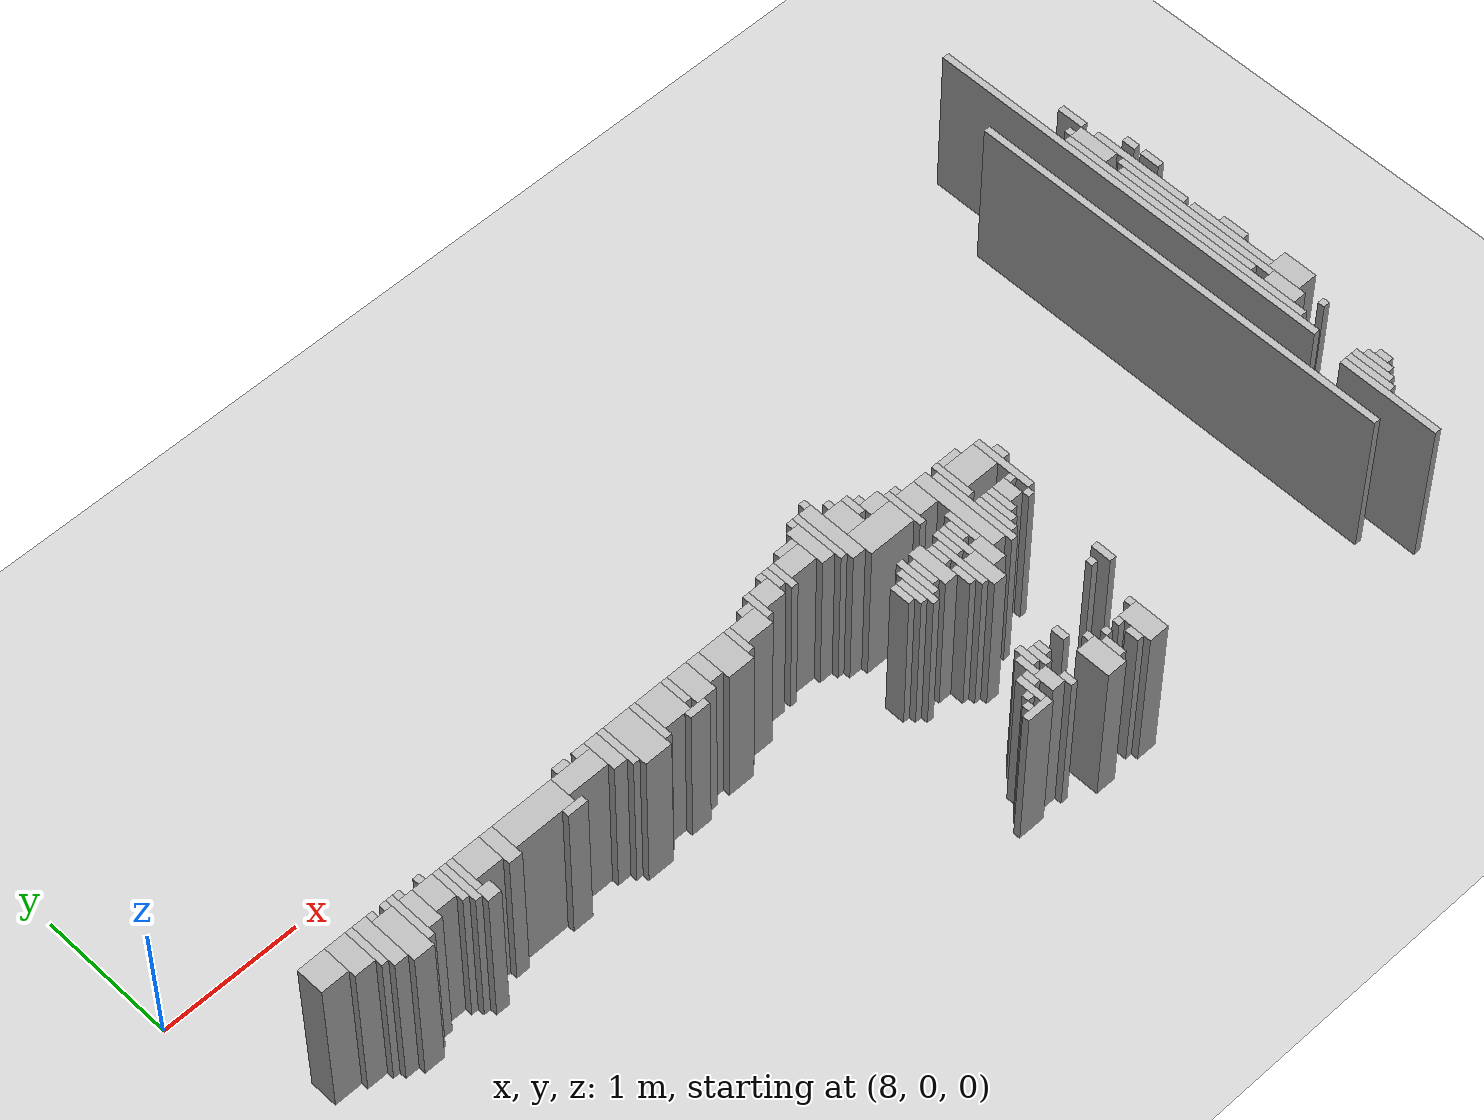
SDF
<sdf version="1.6">
 <world name="d10_floor">
  <include><uri>model://sun</uri></include>
  <include><uri>model://ground_plane</uri></include>
  <model name="d10_walls">
   <static>true</static>
   <link name="w1229">
    <pose>15.650 -2.370 0.60 0 0 0</pose>
    <collision name="c"><geometry><box><size>0.050 0.750 1.20</size></box></geometry></collision>
    <visual name="v">
     <geometry><box><size>0.050 0.750 1.20</size></box></geometry>
     <material><ambient>0.6 0.6 0.6 1</ambient><diffuse>0.7 0.7 0.7 1</diffuse></material>
    </visual>
   </link>
   <link name="w1243">
    <pose>13.050 -2.470 0.60 0 0 0</pose>
    <collision name="c"><geometry><box><size>0.150 0.250 1.20</size></box></geometry></collision>
    <visual name="v">
     <geometry><box><size>0.150 0.250 1.20</size></box></geometry>
     <material><ambient>0.6 0.6 0.6 1</ambient><diffuse>0.7 0.7 0.7 1</diffuse></material>
    </visual>
   </link>
   <link name="w1245">
    <pose>13.400 -2.470 0.60 0 0 0</pose>
    <collision name="c"><geometry><box><size>0.150 0.250 1.20</size></box></geometry></collision>
    <visual name="v">
     <geometry><box><size>0.150 0.250 1.20</size></box></geometry>
     <material><ambient>0.6 0.6 0.6 1</ambient><diffuse>0.7 0.7 0.7 1</diffuse></material>
    </visual>
   </link>
   <link name="w1247">
    <pose>13.150 -2.470 0.60 0 0 0</pose>
    <collision name="c"><geometry><box><size>0.050 0.150 1.20</size></box></geometry></collision>
    <visual name="v">
     <geometry><box><size>0.050 0.150 1.20</size></box></geometry>
     <material><ambient>0.6 0.6 0.6 1</ambient><diffuse>0.7 0.7 0.7 1</diffuse></material>
    </visual>
   </link>
   <link name="w1248">
    <pose>13.300 -2.495 0.60 0 0 0</pose>
    <collision name="c"><geometry><box><size>0.050 0.100 1.20</size></box></geometry></collision>
    <visual name="v">
     <geometry><box><size>0.050 0.100 1.20</size></box></geometry>
     <material><ambient>0.6 0.6 0.6 1</ambient><diffuse>0.7 0.7 0.7 1</diffuse></material>
    </visual>
   </link>
   <link name="w1250">
    <pose>12.525 -2.470 0.60 0 0 0</pose>
    <collision name="c"><geometry><box><size>0.200 0.050 1.20</size></box></geometry></collision>
    <visual name="v">
     <geometry><box><size>0.200 0.050 1.20</size></box></geometry>
     <material><ambient>0.6 0.6 0.6 1</ambient><diffuse>0.7 0.7 0.7 1</diffuse></material>
    </visual>
   </link>
   <link name="w1251">
    <pose>12.800 -2.445 0.60 0 0 0</pose>
    <collision name="c"><geometry><box><size>0.050 0.100 1.20</size></box></geometry></collision>
    <visual name="v">
     <geometry><box><size>0.050 0.100 1.20</size></box></geometry>
     <material><ambient>0.6 0.6 0.6 1</ambient><diffuse>0.7 0.7 0.7 1</diffuse></material>
    </visual>
   </link>
   <link name="w1254">
    <pose>12.500 -2.420 0.60 0 0 0</pose>
    <collision name="c"><geometry><box><size>0.050 0.050 1.20</size></box></geometry></collision>
    <visual name="v">
     <geometry><box><size>0.050 0.050 1.20</size></box></geometry>
     <material><ambient>0.6 0.6 0.6 1</ambient><diffuse>0.7 0.7 0.7 1</diffuse></material>
    </visual>
   </link>
   <link name="w1255">
    <pose>12.600 -2.345 0.60 0 0 0</pose>
    <collision name="c"><geometry><box><size>0.050 0.200 1.20</size></box></geometry></collision>
    <visual name="v">
     <geometry><box><size>0.050 0.200 1.20</size></box></geometry>
     <material><ambient>0.6 0.6 0.6 1</ambient><diffuse>0.7 0.7 0.7 1</diffuse></material>
    </visual>
   </link>
   <link name="w1256">
    <pose>12.725 -2.370 0.60 0 0 0</pose>
    <collision name="c"><geometry><box><size>0.100 0.150 1.20</size></box></geometry></collision>
    <visual name="v">
     <geometry><box><size>0.100 0.150 1.20</size></box></geometry>
     <material><ambient>0.6 0.6 0.6 1</ambient><diffuse>0.7 0.7 0.7 1</diffuse></material>
    </visual>
   </link>
   <link name="w1257">
    <pose>15.450 -0.845 0.60 0 0 0</pose>
    <collision name="c"><geometry><box><size>0.050 3.200 1.20</size></box></geometry></collision>
    <visual name="v">
     <geometry><box><size>0.050 3.200 1.20</size></box></geometry>
     <material><ambient>0.6 0.6 0.6 1</ambient><diffuse>0.7 0.7 0.7 1</diffuse></material>
    </visual>
   </link>
   <link name="w1258">
    <pose>12.550 -2.370 0.60 0 0 0</pose>
    <collision name="c"><geometry><box><size>0.050 0.050 1.20</size></box></geometry></collision>
    <visual name="v">
     <geometry><box><size>0.050 0.050 1.20</size></box></geometry>
     <material><ambient>0.6 0.6 0.6 1</ambient><diffuse>0.7 0.7 0.7 1</diffuse></material>
    </visual>
   </link>
   <link name="w1259">
    <pose>13.200 -2.370 0.60 0 0 0</pose>
    <collision name="c"><geometry><box><size>0.050 0.050 1.20</size></box></geometry></collision>
    <visual name="v">
     <geometry><box><size>0.050 0.050 1.20</size></box></geometry>
     <material><ambient>0.6 0.6 0.6 1</ambient><diffuse>0.7 0.7 0.7 1</diffuse></material>
    </visual>
   </link>
   <link name="w1260">
    <pose>13.300 -2.370 0.60 0 0 0</pose>
    <collision name="c"><geometry><box><size>0.050 0.050 1.20</size></box></geometry></collision>
    <visual name="v">
     <geometry><box><size>0.050 0.050 1.20</size></box></geometry>
     <material><ambient>0.6 0.6 0.6 1</ambient><diffuse>0.7 0.7 0.7 1</diffuse></material>
    </visual>
   </link>
   <link name="w1263">
    <pose>12.650 -2.295 0.60 0 0 0</pose>
    <collision name="c"><geometry><box><size>0.050 0.100 1.20</size></box></geometry></collision>
    <visual name="v">
     <geometry><box><size>0.050 0.100 1.20</size></box></geometry>
     <material><ambient>0.6 0.6 0.6 1</ambient><diffuse>0.7 0.7 0.7 1</diffuse></material>
    </visual>
   </link>
   <link name="w1264">
    <pose>13.100 -2.320 0.60 0 0 0</pose>
    <collision name="c"><geometry><box><size>0.050 0.050 1.20</size></box></geometry></collision>
    <visual name="v">
     <geometry><box><size>0.050 0.050 1.20</size></box></geometry>
     <material><ambient>0.6 0.6 0.6 1</ambient><diffuse>0.7 0.7 0.7 1</diffuse></material>
    </visual>
   </link>
   <link name="w1265">
    <pose>13.450 -2.320 0.60 0 0 0</pose>
    <collision name="c"><geometry><box><size>0.050 0.050 1.20</size></box></geometry></collision>
    <visual name="v">
     <geometry><box><size>0.050 0.050 1.20</size></box></geometry>
     <material><ambient>0.6 0.6 0.6 1</ambient><diffuse>0.7 0.7 0.7 1</diffuse></material>
    </visual>
   </link>
   <link name="w1266">
    <pose>15.700 -2.170 0.60 0 0 0</pose>
    <collision name="c"><geometry><box><size>0.050 0.350 1.20</size></box></geometry></collision>
    <visual name="v">
     <geometry><box><size>0.050 0.350 1.20</size></box></geometry>
     <material><ambient>0.6 0.6 0.6 1</ambient><diffuse>0.7 0.7 0.7 1</diffuse></material>
    </visual>
   </link>
   <link name="w1269">
    <pose>12.700 -2.220 0.60 0 0 0</pose>
    <collision name="c"><geometry><box><size>0.050 0.150 1.20</size></box></geometry></collision>
    <visual name="v">
     <geometry><box><size>0.050 0.150 1.20</size></box></geometry>
     <material><ambient>0.6 0.6 0.6 1</ambient><diffuse>0.7 0.7 0.7 1</diffuse></material>
    </visual>
   </link>
   <link name="w1270">
    <pose>12.800 -2.220 0.60 0 0 0</pose>
    <collision name="c"><geometry><box><size>0.050 0.150 1.20</size></box></geometry></collision>
    <visual name="v">
     <geometry><box><size>0.050 0.150 1.20</size></box></geometry>
     <material><ambient>0.6 0.6 0.6 1</ambient><diffuse>0.7 0.7 0.7 1</diffuse></material>
    </visual>
   </link>
   <link name="w1271">
    <pose>15.750 -2.145 0.60 0 0 0</pose>
    <collision name="c"><geometry><box><size>0.050 0.300 1.20</size></box></geometry></collision>
    <visual name="v">
     <geometry><box><size>0.050 0.300 1.20</size></box></geometry>
     <material><ambient>0.6 0.6 0.6 1</ambient><diffuse>0.7 0.7 0.7 1</diffuse></material>
    </visual>
   </link>
   <link name="w1274">
    <pose>12.750 -2.170 0.60 0 0 0</pose>
    <collision name="c"><geometry><box><size>0.050 0.150 1.20</size></box></geometry></collision>
    <visual name="v">
     <geometry><box><size>0.050 0.150 1.20</size></box></geometry>
     <material><ambient>0.6 0.6 0.6 1</ambient><diffuse>0.7 0.7 0.7 1</diffuse></material>
    </visual>
   </link>
   <link name="w1275">
    <pose>12.850 -2.195 0.60 0 0 0</pose>
    <collision name="c"><geometry><box><size>0.050 0.100 1.20</size></box></geometry></collision>
    <visual name="v">
     <geometry><box><size>0.050 0.100 1.20</size></box></geometry>
     <material><ambient>0.6 0.6 0.6 1</ambient><diffuse>0.7 0.7 0.7 1</diffuse></material>
    </visual>
   </link>
   <link name="w1276">
    <pose>13.000 -2.195 0.60 0 0 0</pose>
    <collision name="c"><geometry><box><size>0.050 0.100 1.20</size></box></geometry></collision>
    <visual name="v">
     <geometry><box><size>0.050 0.100 1.20</size></box></geometry>
     <material><ambient>0.6 0.6 0.6 1</ambient><diffuse>0.7 0.7 0.7 1</diffuse></material>
    </visual>
   </link>
   <link name="w1277">
    <pose>15.800 -2.145 0.60 0 0 0</pose>
    <collision name="c"><geometry><box><size>0.050 0.200 1.20</size></box></geometry></collision>
    <visual name="v">
     <geometry><box><size>0.050 0.200 1.20</size></box></geometry>
     <material><ambient>0.6 0.6 0.6 1</ambient><diffuse>0.7 0.7 0.7 1</diffuse></material>
    </visual>
   </link>
   <link name="w1278">
    <pose>15.850 -2.145 0.60 0 0 0</pose>
    <collision name="c"><geometry><box><size>0.050 0.100 1.20</size></box></geometry></collision>
    <visual name="v">
     <geometry><box><size>0.050 0.100 1.20</size></box></geometry>
     <material><ambient>0.6 0.6 0.6 1</ambient><diffuse>0.7 0.7 0.7 1</diffuse></material>
    </visual>
   </link>
   <link name="w1283">
    <pose>13.600 -1.970 0.60 0 0 0</pose>
    <collision name="c"><geometry><box><size>0.050 0.150 1.20</size></box></geometry></collision>
    <visual name="v">
     <geometry><box><size>0.050 0.150 1.20</size></box></geometry>
     <material><ambient>0.6 0.6 0.6 1</ambient><diffuse>0.7 0.7 0.7 1</diffuse></material>
    </visual>
   </link>
   <link name="w1285">
    <pose>13.500 -1.970 0.60 0 0 0</pose>
    <collision name="c"><geometry><box><size>0.050 0.050 1.20</size></box></geometry></collision>
    <visual name="v">
     <geometry><box><size>0.050 0.050 1.20</size></box></geometry>
     <material><ambient>0.6 0.6 0.6 1</ambient><diffuse>0.7 0.7 0.7 1</diffuse></material>
    </visual>
   </link>
   <link name="w1296">
    <pose>15.700 -0.195 0.60 0 0 0</pose>
    <collision name="c"><geometry><box><size>0.050 3.100 1.20</size></box></geometry></collision>
    <visual name="v">
     <geometry><box><size>0.050 3.100 1.20</size></box></geometry>
     <material><ambient>0.6 0.6 0.6 1</ambient><diffuse>0.7 0.7 0.7 1</diffuse></material>
    </visual>
   </link>
   <link name="w1297">
    <pose>13.025 -1.570 0.60 0 0 0</pose>
    <collision name="c"><geometry><box><size>0.100 0.250 1.20</size></box></geometry></collision>
    <visual name="v">
     <geometry><box><size>0.100 0.250 1.20</size></box></geometry>
     <material><ambient>0.6 0.6 0.6 1</ambient><diffuse>0.7 0.7 0.7 1</diffuse></material>
    </visual>
   </link>
   <link name="w1299">
    <pose>12.950 -1.445 0.60 0 0 0</pose>
    <collision name="c"><geometry><box><size>0.050 0.400 1.20</size></box></geometry></collision>
    <visual name="v">
     <geometry><box><size>0.050 0.400 1.20</size></box></geometry>
     <material><ambient>0.6 0.6 0.6 1</ambient><diffuse>0.7 0.7 0.7 1</diffuse></material>
    </visual>
   </link>
   <link name="w1300">
    <pose>15.900 -1.620 0.60 0 0 0</pose>
    <collision name="c"><geometry><box><size>0.050 0.050 1.20</size></box></geometry></collision>
    <visual name="v">
     <geometry><box><size>0.050 0.050 1.20</size></box></geometry>
     <material><ambient>0.6 0.6 0.6 1</ambient><diffuse>0.7 0.7 0.7 1</diffuse></material>
    </visual>
   </link>
   <link name="w1304">
    <pose>12.900 -1.520 0.60 0 0 0</pose>
    <collision name="c"><geometry><box><size>0.050 0.150 1.20</size></box></geometry></collision>
    <visual name="v">
     <geometry><box><size>0.050 0.150 1.20</size></box></geometry>
     <material><ambient>0.6 0.6 0.6 1</ambient><diffuse>0.7 0.7 0.7 1</diffuse></material>
    </visual>
   </link>
   <link name="w1305">
    <pose>13.125 -1.495 0.60 0 0 0</pose>
    <collision name="c"><geometry><box><size>0.100 0.200 1.20</size></box></geometry></collision>
    <visual name="v">
     <geometry><box><size>0.100 0.200 1.20</size></box></geometry>
     <material><ambient>0.6 0.6 0.6 1</ambient><diffuse>0.7 0.7 0.7 1</diffuse></material>
    </visual>
   </link>
   <link name="w1306">
    <pose>15.750 -0.620 0.60 0 0 0</pose>
    <collision name="c"><geometry><box><size>0.050 1.950 1.20</size></box></geometry></collision>
    <visual name="v">
     <geometry><box><size>0.050 1.950 1.20</size></box></geometry>
     <material><ambient>0.6 0.6 0.6 1</ambient><diffuse>0.7 0.7 0.7 1</diffuse></material>
    </visual>
   </link>
   <link name="w1310">
    <pose>12.650 -1.395 0.60 0 0 0</pose>
    <collision name="c"><geometry><box><size>0.050 0.300 1.20</size></box></geometry></collision>
    <visual name="v">
     <geometry><box><size>0.050 0.300 1.20</size></box></geometry>
     <material><ambient>0.6 0.6 0.6 1</ambient><diffuse>0.7 0.7 0.7 1</diffuse></material>
    </visual>
   </link>
   <link name="w1311">
    <pose>13.300 -1.220 0.60 0 0 0</pose>
    <collision name="c"><geometry><box><size>0.050 0.650 1.20</size></box></geometry></collision>
    <visual name="v">
     <geometry><box><size>0.050 0.650 1.20</size></box></geometry>
     <material><ambient>0.6 0.6 0.6 1</ambient><diffuse>0.7 0.7 0.7 1</diffuse></material>
    </visual>
   </link>
   <link name="w1314">
    <pose>12.600 -1.395 0.60 0 0 0</pose>
    <collision name="c"><geometry><box><size>0.050 0.200 1.20</size></box></geometry></collision>
    <visual name="v">
     <geometry><box><size>0.050 0.200 1.20</size></box></geometry>
     <material><ambient>0.6 0.6 0.6 1</ambient><diffuse>0.7 0.7 0.7 1</diffuse></material>
    </visual>
   </link>
   <link name="w1315">
    <pose>12.700 -1.345 0.60 0 0 0</pose>
    <collision name="c"><geometry><box><size>0.050 0.300 1.20</size></box></geometry></collision>
    <visual name="v">
     <geometry><box><size>0.050 0.300 1.20</size></box></geometry>
     <material><ambient>0.6 0.6 0.6 1</ambient><diffuse>0.7 0.7 0.7 1</diffuse></material>
    </visual>
   </link>
   <link name="w1316">
    <pose>12.825 -1.345 0.60 0 0 0</pose>
    <collision name="c"><geometry><box><size>0.100 0.300 1.20</size></box></geometry></collision>
    <visual name="v">
     <geometry><box><size>0.100 0.300 1.20</size></box></geometry>
     <material><ambient>0.6 0.6 0.6 1</ambient><diffuse>0.7 0.7 0.7 1</diffuse></material>
    </visual>
   </link>
   <link name="w1317">
    <pose>13.225 -1.170 0.60 0 0 0</pose>
    <collision name="c"><geometry><box><size>0.100 0.650 1.20</size></box></geometry></collision>
    <visual name="v">
     <geometry><box><size>0.100 0.650 1.20</size></box></geometry>
     <material><ambient>0.6 0.6 0.6 1</ambient><diffuse>0.7 0.7 0.7 1</diffuse></material>
    </visual>
   </link>
   <link name="w1318">
    <pose>13.350 -1.345 0.60 0 0 0</pose>
    <collision name="c"><geometry><box><size>0.050 0.300 1.20</size></box></geometry></collision>
    <visual name="v">
     <geometry><box><size>0.050 0.300 1.20</size></box></geometry>
     <material><ambient>0.6 0.6 0.6 1</ambient><diffuse>0.7 0.7 0.7 1</diffuse></material>
    </visual>
   </link>
   <link name="w1319">
    <pose>15.825 -1.370 0.60 0 0 0</pose>
    <collision name="c"><geometry><box><size>0.100 0.250 1.20</size></box></geometry></collision>
    <visual name="v">
     <geometry><box><size>0.100 0.250 1.20</size></box></geometry>
     <material><ambient>0.6 0.6 0.6 1</ambient><diffuse>0.7 0.7 0.7 1</diffuse></material>
    </visual>
   </link>
   <link name="w1321">
    <pose>12.550 -1.370 0.60 0 0 0</pose>
    <collision name="c"><geometry><box><size>0.050 0.150 1.20</size></box></geometry></collision>
    <visual name="v">
     <geometry><box><size>0.050 0.150 1.20</size></box></geometry>
     <material><ambient>0.6 0.6 0.6 1</ambient><diffuse>0.7 0.7 0.7 1</diffuse></material>
    </visual>
   </link>
   <link name="w1322">
    <pose>12.750 -1.345 0.60 0 0 0</pose>
    <collision name="c"><geometry><box><size>0.050 0.200 1.20</size></box></geometry></collision>
    <visual name="v">
     <geometry><box><size>0.050 0.200 1.20</size></box></geometry>
     <material><ambient>0.6 0.6 0.6 1</ambient><diffuse>0.7 0.7 0.7 1</diffuse></material>
    </visual>
   </link>
   <link name="w1323">
    <pose>13.050 -1.320 0.60 0 0 0</pose>
    <collision name="c"><geometry><box><size>0.050 0.250 1.20</size></box></geometry></collision>
    <visual name="v">
     <geometry><box><size>0.050 0.250 1.20</size></box></geometry>
     <material><ambient>0.6 0.6 0.6 1</ambient><diffuse>0.7 0.7 0.7 1</diffuse></material>
    </visual>
   </link>
   <link name="w1324">
    <pose>13.400 -1.320 0.60 0 0 0</pose>
    <collision name="c"><geometry><box><size>0.050 0.250 1.20</size></box></geometry></collision>
    <visual name="v">
     <geometry><box><size>0.050 0.250 1.20</size></box></geometry>
     <material><ambient>0.6 0.6 0.6 1</ambient><diffuse>0.7 0.7 0.7 1</diffuse></material>
    </visual>
   </link>
   <link name="w1325">
    <pose>15.950 -1.320 0.60 0 0 0</pose>
    <collision name="c"><geometry><box><size>0.150 0.250 1.20</size></box></geometry></collision>
    <visual name="v">
     <geometry><box><size>0.150 0.250 1.20</size></box></geometry>
     <material><ambient>0.6 0.6 0.6 1</ambient><diffuse>0.7 0.7 0.7 1</diffuse></material>
    </visual>
   </link>
   <link name="w1327">
    <pose>12.900 -1.320 0.60 0 0 0</pose>
    <collision name="c"><geometry><box><size>0.050 0.150 1.20</size></box></geometry></collision>
    <visual name="v">
     <geometry><box><size>0.050 0.150 1.20</size></box></geometry>
     <material><ambient>0.6 0.6 0.6 1</ambient><diffuse>0.7 0.7 0.7 1</diffuse></material>
    </visual>
   </link>
   <link name="w1328">
    <pose>13.000 -1.295 0.60 0 0 0</pose>
    <collision name="c"><geometry><box><size>0.050 0.200 1.20</size></box></geometry></collision>
    <visual name="v">
     <geometry><box><size>0.050 0.200 1.20</size></box></geometry>
     <material><ambient>0.6 0.6 0.6 1</ambient><diffuse>0.7 0.7 0.7 1</diffuse></material>
    </visual>
   </link>
   <link name="w1329">
    <pose>13.150 -1.270 0.60 0 0 0</pose>
    <collision name="c"><geometry><box><size>0.050 0.250 1.20</size></box></geometry></collision>
    <visual name="v">
     <geometry><box><size>0.050 0.250 1.20</size></box></geometry>
     <material><ambient>0.6 0.6 0.6 1</ambient><diffuse>0.7 0.7 0.7 1</diffuse></material>
    </visual>
   </link>
   <link name="w1330">
    <pose>13.450 -1.295 0.60 0 0 0</pose>
    <collision name="c"><geometry><box><size>0.050 0.200 1.20</size></box></geometry></collision>
    <visual name="v">
     <geometry><box><size>0.050 0.200 1.20</size></box></geometry>
     <material><ambient>0.6 0.6 0.6 1</ambient><diffuse>0.7 0.7 0.7 1</diffuse></material>
    </visual>
   </link>
   <link name="w1331">
    <pose>13.600 -1.370 0.60 0 0 0</pose>
    <collision name="c"><geometry><box><size>0.050 0.050 1.20</size></box></geometry></collision>
    <visual name="v">
     <geometry><box><size>0.050 0.050 1.20</size></box></geometry>
     <material><ambient>0.6 0.6 0.6 1</ambient><diffuse>0.7 0.7 0.7 1</diffuse></material>
    </visual>
   </link>
   <link name="w1333">
    <pose>13.100 -1.270 0.60 0 0 0</pose>
    <collision name="c"><geometry><box><size>0.050 0.150 1.20</size></box></geometry></collision>
    <visual name="v">
     <geometry><box><size>0.050 0.150 1.20</size></box></geometry>
     <material><ambient>0.6 0.6 0.6 1</ambient><diffuse>0.7 0.7 0.7 1</diffuse></material>
    </visual>
   </link>
   <link name="w1334">
    <pose>13.525 -1.270 0.60 0 0 0</pose>
    <collision name="c"><geometry><box><size>0.100 0.150 1.20</size></box></geometry></collision>
    <visual name="v">
     <geometry><box><size>0.100 0.150 1.20</size></box></geometry>
     <material><ambient>0.6 0.6 0.6 1</ambient><diffuse>0.7 0.7 0.7 1</diffuse></material>
    </visual>
   </link>
   <link name="w1335">
    <pose>13.650 -1.120 0.60 0 0 0</pose>
    <collision name="c"><geometry><box><size>0.050 0.450 1.20</size></box></geometry></collision>
    <visual name="v">
     <geometry><box><size>0.050 0.450 1.20</size></box></geometry>
     <material><ambient>0.6 0.6 0.6 1</ambient><diffuse>0.7 0.7 0.7 1</diffuse></material>
    </visual>
   </link>
   <link name="w1346">
    <pose>8.950 -1.070 0.60 0 0 0</pose>
    <collision name="c"><geometry><box><size>0.150 0.350 1.20</size></box></geometry></collision>
    <visual name="v">
     <geometry><box><size>0.150 0.350 1.20</size></box></geometry>
     <material><ambient>0.6 0.6 0.6 1</ambient><diffuse>0.7 0.7 0.7 1</diffuse></material>
    </visual>
   </link>
   <link name="w1347">
    <pose>9.475 -1.195 0.60 0 0 0</pose>
    <collision name="c"><geometry><box><size>0.100 0.100 1.20</size></box></geometry></collision>
    <visual name="v">
     <geometry><box><size>0.100 0.100 1.20</size></box></geometry>
     <material><ambient>0.6 0.6 0.6 1</ambient><diffuse>0.7 0.7 0.7 1</diffuse></material>
    </visual>
   </link>
   <link name="w1348">
    <pose>13.600 -1.220 0.60 0 0 0</pose>
    <collision name="c"><geometry><box><size>0.050 0.050 1.20</size></box></geometry></collision>
    <visual name="v">
     <geometry><box><size>0.050 0.050 1.20</size></box></geometry>
     <material><ambient>0.6 0.6 0.6 1</ambient><diffuse>0.7 0.7 0.7 1</diffuse></material>
    </visual>
   </link>
   <link name="w1349">
    <pose>15.850 -0.620 0.60 0 0 0</pose>
    <collision name="c"><geometry><box><size>0.050 1.250 1.20</size></box></geometry></collision>
    <visual name="v">
     <geometry><box><size>0.050 1.250 1.20</size></box></geometry>
     <material><ambient>0.6 0.6 0.6 1</ambient><diffuse>0.7 0.7 0.7 1</diffuse></material>
    </visual>
   </link>
   <link name="w1358">
    <pose>8.825 -1.020 0.60 0 0 0</pose>
    <collision name="c"><geometry><box><size>0.100 0.350 1.20</size></box></geometry></collision>
    <visual name="v">
     <geometry><box><size>0.100 0.350 1.20</size></box></geometry>
     <material><ambient>0.6 0.6 0.6 1</ambient><diffuse>0.7 0.7 0.7 1</diffuse></material>
    </visual>
   </link>
   <link name="w1359">
    <pose>9.050 -1.020 0.60 0 0 0</pose>
    <collision name="c"><geometry><box><size>0.050 0.350 1.20</size></box></geometry></collision>
    <visual name="v">
     <geometry><box><size>0.050 0.350 1.20</size></box></geometry>
     <material><ambient>0.6 0.6 0.6 1</ambient><diffuse>0.7 0.7 0.7 1</diffuse></material>
    </visual>
   </link>
   <link name="w1360">
    <pose>9.400 -1.045 0.60 0 0 0</pose>
    <collision name="c"><geometry><box><size>0.050 0.300 1.20</size></box></geometry></collision>
    <visual name="v">
     <geometry><box><size>0.050 0.300 1.20</size></box></geometry>
     <material><ambient>0.6 0.6 0.6 1</ambient><diffuse>0.7 0.7 0.7 1</diffuse></material>
    </visual>
   </link>
   <link name="w1361">
    <pose>10.775 -1.020 0.60 0 0 0</pose>
    <collision name="c"><geometry><box><size>0.200 0.350 1.20</size></box></geometry></collision>
    <visual name="v">
     <geometry><box><size>0.200 0.350 1.20</size></box></geometry>
     <material><ambient>0.6 0.6 0.6 1</ambient><diffuse>0.7 0.7 0.7 1</diffuse></material>
    </visual>
   </link>
   <link name="w1362">
    <pose>15.900 -0.870 0.60 0 0 0</pose>
    <collision name="c"><geometry><box><size>0.050 0.650 1.20</size></box></geometry></collision>
    <visual name="v">
     <geometry><box><size>0.050 0.650 1.20</size></box></geometry>
     <material><ambient>0.6 0.6 0.6 1</ambient><diffuse>0.7 0.7 0.7 1</diffuse></material>
    </visual>
   </link>
   <link name="w1373">
    <pose>8.750 -0.995 0.60 0 0 0</pose>
    <collision name="c"><geometry><box><size>0.050 0.300 1.20</size></box></geometry></collision>
    <visual name="v">
     <geometry><box><size>0.050 0.300 1.20</size></box></geometry>
     <material><ambient>0.6 0.6 0.6 1</ambient><diffuse>0.7 0.7 0.7 1</diffuse></material>
    </visual>
   </link>
   <link name="w1374">
    <pose>9.125 -1.020 0.60 0 0 0</pose>
    <collision name="c"><geometry><box><size>0.100 0.250 1.20</size></box></geometry></collision>
    <visual name="v">
     <geometry><box><size>0.100 0.250 1.20</size></box></geometry>
     <material><ambient>0.6 0.6 0.6 1</ambient><diffuse>0.7 0.7 0.7 1</diffuse></material>
    </visual>
   </link>
   <link name="w1375">
    <pose>9.350 -1.020 0.60 0 0 0</pose>
    <collision name="c"><geometry><box><size>0.050 0.250 1.20</size></box></geometry></collision>
    <visual name="v">
     <geometry><box><size>0.050 0.250 1.20</size></box></geometry>
     <material><ambient>0.6 0.6 0.6 1</ambient><diffuse>0.7 0.7 0.7 1</diffuse></material>
    </visual>
   </link>
   <link name="w1376">
    <pose>9.450 -1.020 0.60 0 0 0</pose>
    <collision name="c"><geometry><box><size>0.050 0.250 1.20</size></box></geometry></collision>
    <visual name="v">
     <geometry><box><size>0.050 0.250 1.20</size></box></geometry>
     <material><ambient>0.6 0.6 0.6 1</ambient><diffuse>0.7 0.7 0.7 1</diffuse></material>
    </visual>
   </link>
   <link name="w1377">
    <pose>9.725 -1.020 0.60 0 0 0</pose>
    <collision name="c"><geometry><box><size>0.100 0.250 1.20</size></box></geometry></collision>
    <visual name="v">
     <geometry><box><size>0.100 0.250 1.20</size></box></geometry>
     <material><ambient>0.6 0.6 0.6 1</ambient><diffuse>0.7 0.7 0.7 1</diffuse></material>
    </visual>
   </link>
   <link name="w1378">
    <pose>10.200 -1.120 0.60 0 0 0</pose>
    <collision name="c"><geometry><box><size>0.150 0.050 1.20</size></box></geometry></collision>
    <visual name="v">
     <geometry><box><size>0.150 0.050 1.20</size></box></geometry>
     <material><ambient>0.6 0.6 0.6 1</ambient><diffuse>0.7 0.7 0.7 1</diffuse></material>
    </visual>
   </link>
   <link name="w1379">
    <pose>10.650 -0.995 0.60 0 0 0</pose>
    <collision name="c"><geometry><box><size>0.050 0.300 1.20</size></box></geometry></collision>
    <visual name="v">
     <geometry><box><size>0.050 0.300 1.20</size></box></geometry>
     <material><ambient>0.6 0.6 0.6 1</ambient><diffuse>0.7 0.7 0.7 1</diffuse></material>
    </visual>
   </link>
   <link name="w1380">
    <pose>10.900 -0.995 0.60 0 0 0</pose>
    <collision name="c"><geometry><box><size>0.050 0.300 1.20</size></box></geometry></collision>
    <visual name="v">
     <geometry><box><size>0.050 0.300 1.20</size></box></geometry>
     <material><ambient>0.6 0.6 0.6 1</ambient><diffuse>0.7 0.7 0.7 1</diffuse></material>
    </visual>
   </link>
   <link name="w1381">
    <pose>11.150 -1.120 0.60 0 0 0</pose>
    <collision name="c"><geometry><box><size>0.150 0.050 1.20</size></box></geometry></collision>
    <visual name="v">
     <geometry><box><size>0.150 0.050 1.20</size></box></geometry>
     <material><ambient>0.6 0.6 0.6 1</ambient><diffuse>0.7 0.7 0.7 1</diffuse></material>
    </visual>
   </link>
   <link name="w1382">
    <pose>13.350 -0.995 0.60 0 0 0</pose>
    <collision name="c"><geometry><box><size>0.050 0.300 1.20</size></box></geometry></collision>
    <visual name="v">
     <geometry><box><size>0.050 0.300 1.20</size></box></geometry>
     <material><ambient>0.6 0.6 0.6 1</ambient><diffuse>0.7 0.7 0.7 1</diffuse></material>
    </visual>
   </link>
   <link name="w1383">
    <pose>15.800 -0.595 0.60 0 0 0</pose>
    <collision name="c"><geometry><box><size>0.050 1.100 1.20</size></box></geometry></collision>
    <visual name="v">
     <geometry><box><size>0.050 1.100 1.20</size></box></geometry>
     <material><ambient>0.6 0.6 0.6 1</ambient><diffuse>0.7 0.7 0.7 1</diffuse></material>
    </visual>
   </link>
   <link name="w1401">
    <pose>8.650 -0.970 0.60 0 0 0</pose>
    <collision name="c"><geometry><box><size>0.150 0.250 1.20</size></box></geometry></collision>
    <visual name="v">
     <geometry><box><size>0.150 0.250 1.20</size></box></geometry>
     <material><ambient>0.6 0.6 0.6 1</ambient><diffuse>0.7 0.7 0.7 1</diffuse></material>
    </visual>
   </link>
   <link name="w1402">
    <pose>9.250 -0.995 0.60 0 0 0</pose>
    <collision name="c"><geometry><box><size>0.150 0.200 1.20</size></box></geometry></collision>
    <visual name="v">
     <geometry><box><size>0.150 0.200 1.20</size></box></geometry>
     <material><ambient>0.6 0.6 0.6 1</ambient><diffuse>0.7 0.7 0.7 1</diffuse></material>
    </visual>
   </link>
   <link name="w1403">
    <pose>9.575 -0.995 0.60 0 0 0</pose>
    <collision name="c"><geometry><box><size>0.200 0.200 1.20</size></box></geometry></collision>
    <visual name="v">
     <geometry><box><size>0.200 0.200 1.20</size></box></geometry>
     <material><ambient>0.6 0.6 0.6 1</ambient><diffuse>0.7 0.7 0.7 1</diffuse></material>
    </visual>
   </link>
   <link name="w1404">
    <pose>10.000 -0.995 0.60 0 0 0</pose>
    <collision name="c"><geometry><box><size>0.450 0.200 1.20</size></box></geometry></collision>
    <visual name="v">
     <geometry><box><size>0.450 0.200 1.20</size></box></geometry>
     <material><ambient>0.6 0.6 0.6 1</ambient><diffuse>0.7 0.7 0.7 1</diffuse></material>
    </visual>
   </link>
   <link name="w1405">
    <pose>10.575 -0.970 0.60 0 0 0</pose>
    <collision name="c"><geometry><box><size>0.100 0.250 1.20</size></box></geometry></collision>
    <visual name="v">
     <geometry><box><size>0.100 0.250 1.20</size></box></geometry>
     <material><ambient>0.6 0.6 0.6 1</ambient><diffuse>0.7 0.7 0.7 1</diffuse></material>
    </visual>
   </link>
   <link name="w1406">
    <pose>11.025 -0.970 0.60 0 0 0</pose>
    <collision name="c"><geometry><box><size>0.200 0.250 1.20</size></box></geometry></collision>
    <visual name="v">
     <geometry><box><size>0.200 0.250 1.20</size></box></geometry>
     <material><ambient>0.6 0.6 0.6 1</ambient><diffuse>0.7 0.7 0.7 1</diffuse></material>
    </visual>
   </link>
   <link name="w1407">
    <pose>11.250 -0.970 0.60 0 0 0</pose>
    <collision name="c"><geometry><box><size>0.150 0.250 1.20</size></box></geometry></collision>
    <visual name="v">
     <geometry><box><size>0.150 0.250 1.20</size></box></geometry>
     <material><ambient>0.6 0.6 0.6 1</ambient><diffuse>0.7 0.7 0.7 1</diffuse></material>
    </visual>
   </link>
   <link name="w1408">
    <pose>11.525 -0.970 0.60 0 0 0</pose>
    <collision name="c"><geometry><box><size>0.200 0.250 1.20</size></box></geometry></collision>
    <visual name="v">
     <geometry><box><size>0.200 0.250 1.20</size></box></geometry>
     <material><ambient>0.6 0.6 0.6 1</ambient><diffuse>0.7 0.7 0.7 1</diffuse></material>
    </visual>
   </link>
   <link name="w1409">
    <pose>13.000 -0.945 0.60 0 0 0</pose>
    <collision name="c"><geometry><box><size>0.050 0.300 1.20</size></box></geometry></collision>
    <visual name="v">
     <geometry><box><size>0.050 0.300 1.20</size></box></geometry>
     <material><ambient>0.6 0.6 0.6 1</ambient><diffuse>0.7 0.7 0.7 1</diffuse></material>
    </visual>
   </link>
   <link name="w1410">
    <pose>13.500 -0.995 0.60 0 0 0</pose>
    <collision name="c"><geometry><box><size>0.250 0.200 1.20</size></box></geometry></collision>
    <visual name="v">
     <geometry><box><size>0.250 0.200 1.20</size></box></geometry>
     <material><ambient>0.6 0.6 0.6 1</ambient><diffuse>0.7 0.7 0.7 1</diffuse></material>
    </visual>
   </link>
   <link name="w1411">
    <pose>13.700 -1.045 0.60 0 0 0</pose>
    <collision name="c"><geometry><box><size>0.050 0.100 1.20</size></box></geometry></collision>
    <visual name="v">
     <geometry><box><size>0.050 0.100 1.20</size></box></geometry>
     <material><ambient>0.6 0.6 0.6 1</ambient><diffuse>0.7 0.7 0.7 1</diffuse></material>
    </visual>
   </link>
   <link name="w1427">
    <pose>8.475 -0.945 0.60 0 0 0</pose>
    <collision name="c"><geometry><box><size>0.200 0.200 1.20</size></box></geometry></collision>
    <visual name="v">
     <geometry><box><size>0.200 0.200 1.20</size></box></geometry>
     <material><ambient>0.6 0.6 0.6 1</ambient><diffuse>0.7 0.7 0.7 1</diffuse></material>
    </visual>
   </link>
   <link name="w1428">
    <pose>10.375 -0.970 0.60 0 0 0</pose>
    <collision name="c"><geometry><box><size>0.300 0.150 1.20</size></box></geometry></collision>
    <visual name="v">
     <geometry><box><size>0.300 0.150 1.20</size></box></geometry>
     <material><ambient>0.6 0.6 0.6 1</ambient><diffuse>0.7 0.7 0.7 1</diffuse></material>
    </visual>
   </link>
   <link name="w1429">
    <pose>11.150 -0.945 0.60 0 0 0</pose>
    <collision name="c"><geometry><box><size>0.050 0.200 1.20</size></box></geometry></collision>
    <visual name="v">
     <geometry><box><size>0.050 0.200 1.20</size></box></geometry>
     <material><ambient>0.6 0.6 0.6 1</ambient><diffuse>0.7 0.7 0.7 1</diffuse></material>
    </visual>
   </link>
   <link name="w1430">
    <pose>11.375 -0.945 0.60 0 0 0</pose>
    <collision name="c"><geometry><box><size>0.100 0.200 1.20</size></box></geometry></collision>
    <visual name="v">
     <geometry><box><size>0.100 0.200 1.20</size></box></geometry>
     <material><ambient>0.6 0.6 0.6 1</ambient><diffuse>0.7 0.7 0.7 1</diffuse></material>
    </visual>
   </link>
   <link name="w1431">
    <pose>11.650 -0.945 0.60 0 0 0</pose>
    <collision name="c"><geometry><box><size>0.050 0.200 1.20</size></box></geometry></collision>
    <visual name="v">
     <geometry><box><size>0.050 0.200 1.20</size></box></geometry>
     <material><ambient>0.6 0.6 0.6 1</ambient><diffuse>0.7 0.7 0.7 1</diffuse></material>
    </visual>
   </link>
   <link name="w1432">
    <pose>12.800 -0.945 0.60 0 0 0</pose>
    <collision name="c"><geometry><box><size>0.350 0.200 1.20</size></box></geometry></collision>
    <visual name="v">
     <geometry><box><size>0.350 0.200 1.20</size></box></geometry>
     <material><ambient>0.6 0.6 0.6 1</ambient><diffuse>0.7 0.7 0.7 1</diffuse></material>
    </visual>
   </link>
   <link name="w1433">
    <pose>13.100 -0.945 0.60 0 0 0</pose>
    <collision name="c"><geometry><box><size>0.150 0.200 1.20</size></box></geometry></collision>
    <visual name="v">
     <geometry><box><size>0.150 0.200 1.20</size></box></geometry>
     <material><ambient>0.6 0.6 0.6 1</ambient><diffuse>0.7 0.7 0.7 1</diffuse></material>
    </visual>
   </link>
   <link name="w1443">
    <pose>11.775 -0.920 0.60 0 0 0</pose>
    <collision name="c"><geometry><box><size>0.200 0.150 1.20</size></box></geometry></collision>
    <visual name="v">
     <geometry><box><size>0.200 0.150 1.20</size></box></geometry>
     <material><ambient>0.6 0.6 0.6 1</ambient><diffuse>0.7 0.7 0.7 1</diffuse></material>
    </visual>
   </link>
   <link name="w1444">
    <pose>12.575 -0.770 0.60 0 0 0</pose>
    <collision name="c"><geometry><box><size>0.100 0.450 1.20</size></box></geometry></collision>
    <visual name="v">
     <geometry><box><size>0.100 0.450 1.20</size></box></geometry>
     <material><ambient>0.6 0.6 0.6 1</ambient><diffuse>0.7 0.7 0.7 1</diffuse></material>
    </visual>
   </link>
   <link name="w1452">
    <pose>11.900 -0.845 0.60 0 0 0</pose>
    <collision name="c"><geometry><box><size>0.050 0.200 1.20</size></box></geometry></collision>
    <visual name="v">
     <geometry><box><size>0.050 0.200 1.20</size></box></geometry>
     <material><ambient>0.6 0.6 0.6 1</ambient><diffuse>0.7 0.7 0.7 1</diffuse></material>
    </visual>
   </link>
   <link name="w1453">
    <pose>12.500 -0.745 0.60 0 0 0</pose>
    <collision name="c"><geometry><box><size>0.050 0.400 1.20</size></box></geometry></collision>
    <visual name="v">
     <geometry><box><size>0.050 0.400 1.20</size></box></geometry>
     <material><ambient>0.6 0.6 0.6 1</ambient><diffuse>0.7 0.7 0.7 1</diffuse></material>
    </visual>
   </link>
   <link name="w1454">
    <pose>15.950 -0.845 0.60 0 0 0</pose>
    <collision name="c"><geometry><box><size>0.050 0.200 1.20</size></box></geometry></collision>
    <visual name="v">
     <geometry><box><size>0.050 0.200 1.20</size></box></geometry>
     <material><ambient>0.6 0.6 0.6 1</ambient><diffuse>0.7 0.7 0.7 1</diffuse></material>
    </visual>
   </link>
   <link name="w1464">
    <pose>8.900 -0.870 0.60 0 0 0</pose>
    <collision name="c"><geometry><box><size>0.050 0.050 1.20</size></box></geometry></collision>
    <visual name="v">
     <geometry><box><size>0.050 0.050 1.20</size></box></geometry>
     <material><ambient>0.6 0.6 0.6 1</ambient><diffuse>0.7 0.7 0.7 1</diffuse></material>
    </visual>
   </link>
   <link name="w1465">
    <pose>9.000 -0.870 0.60 0 0 0</pose>
    <collision name="c"><geometry><box><size>0.050 0.050 1.20</size></box></geometry></collision>
    <visual name="v">
     <geometry><box><size>0.050 0.050 1.20</size></box></geometry>
     <material><ambient>0.6 0.6 0.6 1</ambient><diffuse>0.7 0.7 0.7 1</diffuse></material>
    </visual>
   </link>
   <link name="w1466">
    <pose>9.100 -0.870 0.60 0 0 0</pose>
    <collision name="c"><geometry><box><size>0.050 0.050 1.20</size></box></geometry></collision>
    <visual name="v">
     <geometry><box><size>0.050 0.050 1.20</size></box></geometry>
     <material><ambient>0.6 0.6 0.6 1</ambient><diffuse>0.7 0.7 0.7 1</diffuse></material>
    </visual>
   </link>
   <link name="w1467">
    <pose>9.250 -0.870 0.60 0 0 0</pose>
    <collision name="c"><geometry><box><size>0.050 0.050 1.20</size></box></geometry></collision>
    <visual name="v">
     <geometry><box><size>0.050 0.050 1.20</size></box></geometry>
     <material><ambient>0.6 0.6 0.6 1</ambient><diffuse>0.7 0.7 0.7 1</diffuse></material>
    </visual>
   </link>
   <link name="w1468">
    <pose>10.325 -0.870 0.60 0 0 0</pose>
    <collision name="c"><geometry><box><size>0.100 0.050 1.20</size></box></geometry></collision>
    <visual name="v">
     <geometry><box><size>0.100 0.050 1.20</size></box></geometry>
     <material><ambient>0.6 0.6 0.6 1</ambient><diffuse>0.7 0.7 0.7 1</diffuse></material>
    </visual>
   </link>
   <link name="w1469">
    <pose>10.475 -0.870 0.60 0 0 0</pose>
    <collision name="c"><geometry><box><size>0.100 0.050 1.20</size></box></geometry></collision>
    <visual name="v">
     <geometry><box><size>0.100 0.050 1.20</size></box></geometry>
     <material><ambient>0.6 0.6 0.6 1</ambient><diffuse>0.7 0.7 0.7 1</diffuse></material>
    </visual>
   </link>
   <link name="w1470">
    <pose>12.000 -0.820 0.60 0 0 0</pose>
    <collision name="c"><geometry><box><size>0.150 0.150 1.20</size></box></geometry></collision>
    <visual name="v">
     <geometry><box><size>0.150 0.150 1.20</size></box></geometry>
     <material><ambient>0.6 0.6 0.6 1</ambient><diffuse>0.7 0.7 0.7 1</diffuse></material>
    </visual>
   </link>
   <link name="w1471">
    <pose>12.150 -0.795 0.60 0 0 0</pose>
    <collision name="c"><geometry><box><size>0.050 0.200 1.20</size></box></geometry></collision>
    <visual name="v">
     <geometry><box><size>0.050 0.200 1.20</size></box></geometry>
     <material><ambient>0.6 0.6 0.6 1</ambient><diffuse>0.7 0.7 0.7 1</diffuse></material>
    </visual>
   </link>
   <link name="w1472">
    <pose>12.425 -0.745 0.60 0 0 0</pose>
    <collision name="c"><geometry><box><size>0.100 0.300 1.20</size></box></geometry></collision>
    <visual name="v">
     <geometry><box><size>0.100 0.300 1.20</size></box></geometry>
     <material><ambient>0.6 0.6 0.6 1</ambient><diffuse>0.7 0.7 0.7 1</diffuse></material>
    </visual>
   </link>
   <link name="w1473">
    <pose>13.450 -0.870 0.60 0 0 0</pose>
    <collision name="c"><geometry><box><size>0.150 0.050 1.20</size></box></geometry></collision>
    <visual name="v">
     <geometry><box><size>0.150 0.050 1.20</size></box></geometry>
     <material><ambient>0.6 0.6 0.6 1</ambient><diffuse>0.7 0.7 0.7 1</diffuse></material>
    </visual>
   </link>
   <link name="w1483">
    <pose>11.825 -0.820 0.60 0 0 0</pose>
    <collision name="c"><geometry><box><size>0.100 0.050 1.20</size></box></geometry></collision>
    <visual name="v">
     <geometry><box><size>0.100 0.050 1.20</size></box></geometry>
     <material><ambient>0.6 0.6 0.6 1</ambient><diffuse>0.7 0.7 0.7 1</diffuse></material>
    </visual>
   </link>
   <link name="w1484">
    <pose>12.100 -0.770 0.60 0 0 0</pose>
    <collision name="c"><geometry><box><size>0.050 0.150 1.20</size></box></geometry></collision>
    <visual name="v">
     <geometry><box><size>0.050 0.150 1.20</size></box></geometry>
     <material><ambient>0.6 0.6 0.6 1</ambient><diffuse>0.7 0.7 0.7 1</diffuse></material>
    </visual>
   </link>
   <link name="w1485">
    <pose>12.275 -0.770 0.60 0 0 0</pose>
    <collision name="c"><geometry><box><size>0.200 0.150 1.20</size></box></geometry></collision>
    <visual name="v">
     <geometry><box><size>0.200 0.150 1.20</size></box></geometry>
     <material><ambient>0.6 0.6 0.6 1</ambient><diffuse>0.7 0.7 0.7 1</diffuse></material>
    </visual>
   </link>
   <link name="w1486">
    <pose>12.700 -0.745 0.60 0 0 0</pose>
    <collision name="c"><geometry><box><size>0.150 0.200 1.20</size></box></geometry></collision>
    <visual name="v">
     <geometry><box><size>0.150 0.200 1.20</size></box></geometry>
     <material><ambient>0.6 0.6 0.6 1</ambient><diffuse>0.7 0.7 0.7 1</diffuse></material>
    </visual>
   </link>
   <link name="w1487">
    <pose>12.900 -0.795 0.60 0 0 0</pose>
    <collision name="c"><geometry><box><size>0.150 0.100 1.20</size></box></geometry></collision>
    <visual name="v">
     <geometry><box><size>0.150 0.100 1.20</size></box></geometry>
     <material><ambient>0.6 0.6 0.6 1</ambient><diffuse>0.7 0.7 0.7 1</diffuse></material>
    </visual>
   </link>
   <link name="w1488">
    <pose>13.050 -0.820 0.60 0 0 0</pose>
    <collision name="c"><geometry><box><size>0.050 0.050 1.20</size></box></geometry></collision>
    <visual name="v">
     <geometry><box><size>0.050 0.050 1.20</size></box></geometry>
     <material><ambient>0.6 0.6 0.6 1</ambient><diffuse>0.7 0.7 0.7 1</diffuse></material>
    </visual>
   </link>
   <link name="w1494">
    <pose>12.800 -0.720 0.60 0 0 0</pose>
    <collision name="c"><geometry><box><size>0.050 0.150 1.20</size></box></geometry></collision>
    <visual name="v">
     <geometry><box><size>0.050 0.150 1.20</size></box></geometry>
     <material><ambient>0.6 0.6 0.6 1</ambient><diffuse>0.7 0.7 0.7 1</diffuse></material>
    </visual>
   </link>
   <link name="w1498">
    <pose>12.050 -0.720 0.60 0 0 0</pose>
    <collision name="c"><geometry><box><size>0.050 0.050 1.20</size></box></geometry></collision>
    <visual name="v">
     <geometry><box><size>0.050 0.050 1.20</size></box></geometry>
     <material><ambient>0.6 0.6 0.6 1</ambient><diffuse>0.7 0.7 0.7 1</diffuse></material>
    </visual>
   </link>
   <link name="w1499">
    <pose>12.850 -0.720 0.60 0 0 0</pose>
    <collision name="c"><geometry><box><size>0.050 0.050 1.20</size></box></geometry></collision>
    <visual name="v">
     <geometry><box><size>0.050 0.050 1.20</size></box></geometry>
     <material><ambient>0.6 0.6 0.6 1</ambient><diffuse>0.7 0.7 0.7 1</diffuse></material>
    </visual>
   </link>
   <link name="w1502">
    <pose>12.300 -0.670 0.60 0 0 0</pose>
    <collision name="c"><geometry><box><size>0.150 0.050 1.20</size></box></geometry></collision>
    <visual name="v">
     <geometry><box><size>0.150 0.050 1.20</size></box></geometry>
     <material><ambient>0.6 0.6 0.6 1</ambient><diffuse>0.7 0.7 0.7 1</diffuse></material>
    </visual>
   </link>
   <link name="w1503">
    <pose>12.700 -0.620 0.60 0 0 0</pose>
    <collision name="c"><geometry><box><size>0.050 0.050 1.20</size></box></geometry></collision>
    <visual name="v">
     <geometry><box><size>0.050 0.050 1.20</size></box></geometry>
     <material><ambient>0.6 0.6 0.6 1</ambient><diffuse>0.7 0.7 0.7 1</diffuse></material>
    </visual>
   </link>
   <link name="w1505">
    <pose>12.450 -0.570 0.60 0 0 0</pose>
    <collision name="c"><geometry><box><size>0.050 0.050 1.20</size></box></geometry></collision>
    <visual name="v">
     <geometry><box><size>0.050 0.050 1.20</size></box></geometry>
     <material><ambient>0.6 0.6 0.6 1</ambient><diffuse>0.7 0.7 0.7 1</diffuse></material>
    </visual>
   </link>
   <link name="w1510">
    <pose>12.600 -0.520 0.60 0 0 0</pose>
    <collision name="c"><geometry><box><size>0.050 0.050 1.20</size></box></geometry></collision>
    <visual name="v">
     <geometry><box><size>0.050 0.050 1.20</size></box></geometry>
     <material><ambient>0.6 0.6 0.6 1</ambient><diffuse>0.7 0.7 0.7 1</diffuse></material>
    </visual>
   </link>
   <link name="w1515">
    <pose>15.900 -0.120 0.60 0 0 0</pose>
    <collision name="c"><geometry><box><size>0.050 0.750 1.20</size></box></geometry></collision>
    <visual name="v">
     <geometry><box><size>0.050 0.750 1.20</size></box></geometry>
     <material><ambient>0.6 0.6 0.6 1</ambient><diffuse>0.7 0.7 0.7 1</diffuse></material>
    </visual>
   </link>
   <link name="w1526">
    <pose>16.000 -0.120 0.60 0 0 0</pose>
    <collision name="c"><geometry><box><size>0.050 0.150 1.20</size></box></geometry></collision>
    <visual name="v">
     <geometry><box><size>0.050 0.150 1.20</size></box></geometry>
     <material><ambient>0.6 0.6 0.6 1</ambient><diffuse>0.7 0.7 0.7 1</diffuse></material>
    </visual>
   </link>
   <link name="w1534">
    <pose>16.000 0.055 0.60 0 0 0</pose>
    <collision name="c"><geometry><box><size>0.050 0.100 1.20</size></box></geometry></collision>
    <visual name="v">
     <geometry><box><size>0.050 0.100 1.20</size></box></geometry>
     <material><ambient>0.6 0.6 0.6 1</ambient><diffuse>0.7 0.7 0.7 1</diffuse></material>
    </visual>
   </link>
   <link name="w1535">
    <pose>15.825 0.205 0.60 0 0 0</pose>
    <collision name="c"><geometry><box><size>0.100 0.300 1.20</size></box></geometry></collision>
    <visual name="v">
     <geometry><box><size>0.100 0.300 1.20</size></box></geometry>
     <material><ambient>0.6 0.6 0.6 1</ambient><diffuse>0.7 0.7 0.7 1</diffuse></material>
    </visual>
   </link>
   <link name="w1540">
    <pose>15.800 0.380 0.60 0 0 0</pose>
    <collision name="c"><geometry><box><size>0.050 0.050 1.20</size></box></geometry></collision>
    <visual name="v">
     <geometry><box><size>0.050 0.050 1.20</size></box></geometry>
     <material><ambient>0.6 0.6 0.6 1</ambient><diffuse>0.7 0.7 0.7 1</diffuse></material>
    </visual>
   </link>
   <link name="w1541">
    <pose>15.900 0.455 0.60 0 0 0</pose>
    <collision name="c"><geometry><box><size>0.050 0.200 1.20</size></box></geometry></collision>
    <visual name="v">
     <geometry><box><size>0.050 0.200 1.20</size></box></geometry>
     <material><ambient>0.6 0.6 0.6 1</ambient><diffuse>0.7 0.7 0.7 1</diffuse></material>
    </visual>
   </link>
  </model>
 </world>
</sdf>
